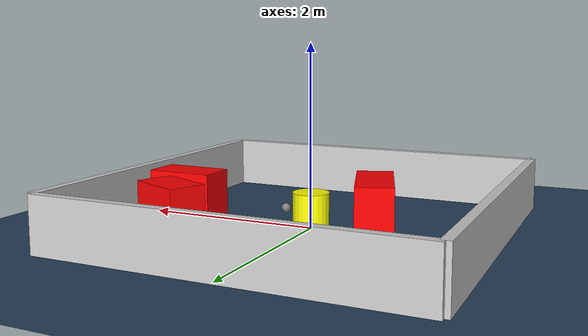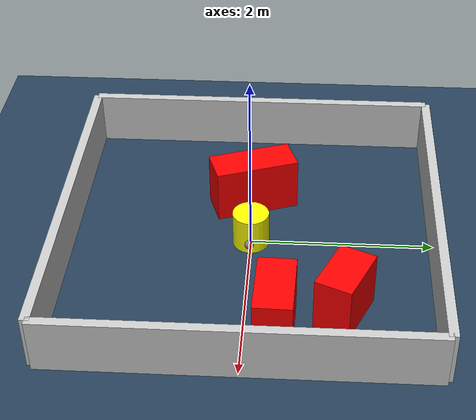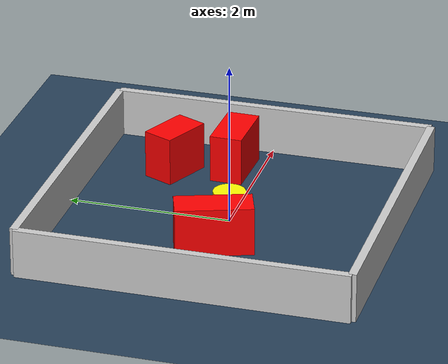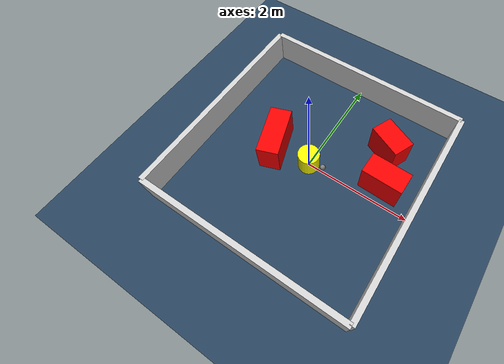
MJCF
<?xml version="1.0" ?>
<mujoco model="generated_environment">
  <option timestep="0.01" integrator="RK4" cone="elliptic"/>
  <default>
    <geom density="1"/>
  </default>
  <asset>
    <texture builtin="gradient" height="3072" rgb1="0.3 0.5 0.7" rgb2="0 0 0" type="skybox" width="512"/>
    <texture builtin="checker" height="300" mark="edge" markrgb="0.8 0.8 0.8" name="groundplane" rgb1="0.2 0.3 0.4" rgb2="0.1 0.2 0.3" type="2d" width="300"/>
    <material name="groundplane" reflectance="0.2" texrepeat="5 5" texture="groundplane" texuniform="true"/>
    <material name="robot" rgba="0.0 1.0 0.0 1"/>
  </asset>
  <worldbody>
    <light dir="0 0 -1" directional="true" pos="0 0 1.5"/>
    <geom condim="4" friction="1.0 0.005 0.001" material="groundplane" name="floor" size="0 0 0.05" type="plane"/>
    <body name="walls">
      <geom name="wall_1" condim="4" pos="-2.0 0.0 0.3" rgba="0.800000011920929 0.800000011920929 0.800000011920929 1.0" size="0.05 2.0 0.3" type="box"/>
      <geom name="wall_2" condim="4" pos="2.0 0.0 0.3" rgba="0.800000011920929 0.800000011920929 0.800000011920929 1.0" size="0.05 2.0 0.3" type="box"/>
      <geom name="wall_3" condim="4" pos="0.0 -2.0 0.3" rgba="0.800000011920929 0.800000011920929 0.800000011920929 1.0" size="2.0 0.05 0.3" type="box"/>
      <geom name="wall_4" condim="4" pos="0.0 2.0 0.3" rgba="0.800000011920929 0.800000011920929 0.800000011920929 1.0" size="2.0 0.05 0.3" type="box"/>
    </body>
    <body name="robot">
      <joint name="joint_x" type="slide" pos="0 0 0" axis="1 0 0"/>
      <joint name="joint_y" type="slide" pos="0 0 0" axis="0 1 0"/>
      <geom name="robot" type="sphere" pos="0.3 0.0 0.2" size="0.05" mass="5." friction="1.0 0.005 0.0001" condim="4" rgba="0.5 0.5 0.5 1.0"/>
      <site name="sensor_ball"/>
    </body>
    <body name="obstacle_movable_1">
      <geom name="obstacle_movable_1" condim="4" pos="0.0 0.0 0.2" euler="0 0 0.0" friction="1.0 0.005 0.001" rgba="1.0 1.0 0.0 1.0" size="0.2 0.2 0.0" type="cylinder" mass="0.1"/>
      <joint type="free"/>
    </body>
    <body name="obstacle_2_static">
      <geom name="obstacle_2_static" condim="4" pos="1.3471803935254096 0.31968323736844373 0.3" euler="0 0 178.49908688480022" friction="1.0 0.005 0.001" rgba="1 0 0 1" size="0.37253546257004605 0.2 0.3" type="box"/>
    </body>
    <body name="obstacle_3_static">
      <geom name="obstacle_3_static" condim="4" pos="-0.7216592075963025 -0.015497081022345593 0.3" euler="0 0 109.43591562895152" friction="1.0 0.005 0.001" rgba="1 0 0 1" size="0.46612964380266797 0.2 0.3" type="box"/>
    </body>
    <body name="obstacle_4_static">
      <geom name="obstacle_4_static" condim="4" pos="1.1042877362970445 1.0155057649866575 0.3" euler="0 0 155.76244614019004" friction="1.0 0.005 0.001" rgba="1 0 0 1" size="0.32072588807178015 0.2 0.3" type="box"/>
    </body>
  </worldbody>
  <actuator>
    <motor name="actuator_x" joint="joint_x" gear="1" ctrlrange="-1 1"/>
    <motor name="actuator_y" joint="joint_y" gear="1" ctrlrange="-1 1"/>
  </actuator>
</mujoco>
